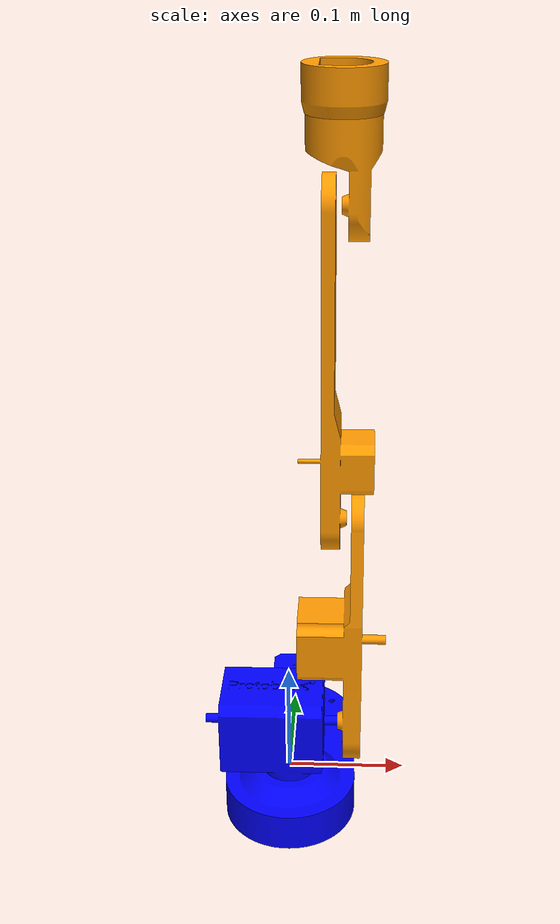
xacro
<?xml version="1.0"?>

<robot name="protobot"
  xmlns:xacro="http://www.ros.org/wiki/xacro">

  <!-- BGN - Include -->
  <xacro:include filename="$(find protobot_description)/urdf/template.xacro" />
  <xacro:include filename="$(find protobot_description)/urdf/protobot.gazebo" />
  <!-- END - Include -->

  <!-- BGN - Material definition -->
  <material name="blue">
    <color rgba="0 0 1 1"/>
  </material>

  <material name="orange">
    <color rgba="1 0.6 0 1"/>
  </material>
  <!-- END - Material definition -->

  <!-- BGN - Robot description -->

  <link name="world"/><joint name="fixed" type="fixed"><parent link="world"/><child link="base_link"/></joint>

  <m_link_mesh name="base_link" origin_rpy="0 0 0" origin_xyz="0 0 0" mass="0.676" ixx="100" ixy="0" ixz="0" iyy="100" iyz="0" izz="100" meshfile="package://protobot_description/meshes/base_link.stl" meshscale="0.001 0.001 0.001" material="blue" />

  <m_joint name="base_link_link_01" type="revolute" axis_xyz="0 0 1" origin_rpy="0 0 0" origin_xyz="0 0 0.0485" parent="base_link" child="link_01" limit_e="1000" limit_l="-3.14" limit_u="3.14" limit_v="0.5" />

  <m_link_mesh name="link_01" origin_rpy="0 0 0" origin_xyz="0 0 0" mass="1.5" ixx="100" ixy="0" ixz="0" iyy="100" iyz="0" izz="100" meshfile="package://protobot_description/meshes/link_01.stl" meshscale="0.001 0.001 0.001" material="blue" />

  <m_joint name="link_01_link_02" type="revolute" axis_xyz="0 0 1" origin_rpy="0 1.57 0" origin_xyz="0.0597 0 0" parent="link_01" child="link_02" limit_e="1000" limit_l="-1.57" limit_u="1.57" limit_v="0.5" />

  <m_link_mesh name="link_02" origin_rpy="0 0 0" origin_xyz="0 0 0" mass="0.780" ixx="50" ixy="0" ixz="0" iyy="50" iyz="0" izz="50" meshfile="package://protobot_description/meshes/link_02.stl" meshscale="0.001 0.001 0.001" material="orange" />

  <m_joint name="link_02_link_03" type="revolute" axis_xyz="0 0 1" origin_rpy="0 0 0" origin_xyz="-0.2 0 0" parent="link_02" child="link_03" limit_e="1000" limit_l="-1.74" limit_u="1.74" limit_v="0.5" />

  <m_link_mesh name="link_03" origin_rpy="0 0 0" origin_xyz="0 0 -0.03" mass="0.409" ixx="20" ixy="0" ixz="0" iyy="20" iyz="0" izz="20" meshfile="package://protobot_description/meshes/link_03.stl" meshscale="0.001 0.001 0.001" material="orange" />

  <m_joint name="link_03_link_04" type="revolute" axis_xyz="0 0 1" origin_rpy="0 0 0" origin_xyz="-0.25 0 0" parent="link_03" child="link_04" limit_e="1000" limit_l="-1.74" limit_u="1.74" limit_v="0.5" />

  <m_link_mesh name="link_04" origin_rpy="0 0 0" origin_xyz="0 0 0" mass="0.195" ixx="10" ixy="0" ixz="0" iyy="10" iyz="0" izz="10" meshfile="package://protobot_description/meshes/link_04.stl" meshscale="0.001 0.001 0.001" material="orange" />

  <m_joint name="link_04_link_05" type="revolute" axis_xyz="0 0 1" origin_rpy="0 -1.57 0" origin_xyz="-0.088362 0 -0.016872" parent="link_04" child="link_05" limit_e="1000" limit_l="-3.14" limit_u="3.14" limit_v="0.5" />

  <m_link_mesh name="link_05" origin_rpy="0 0 0" origin_xyz="0 0 0" mass="0.195" ixx="10" ixy="0" ixz="0" iyy="10" iyz="0" izz="10" meshfile="package://protobot_description/meshes/link_05.stl" meshscale="0.001 0.001 0.001" material="orange" />

  <!-- END - Robot description -->
</robot>

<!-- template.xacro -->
<robot xmlns:xacro="http://www.ros.org/wiki/xacro">

  <xacro:macro name="m_joint" params="name type axis_xyz origin_rpy origin_xyz parent child limit_e limit_l limit_u limit_v">
    <joint name="${name}" type="${type}">
      <axis xyz="${axis_xyz}" />
      <limit effort="${limit_e}" lower="${limit_l}" upper="${limit_u}" velocity="${limit_v}" />
      <origin rpy="${origin_rpy}" xyz="${origin_xyz}" />
      <parent link="${parent}" />
      <child link="${child}" />
    </joint>
    <transmission name="trans_${name}">
      <type>transmission_interface/SimpleTransmission</type>
      <joint name="${name}">
        <hardwareInterface>hardware_interface/EffortJointInterface</hardwareInterface>
      </joint>
      <actuator name="motor_${name}">
        <hardwareInterface>hardware_interface/EffortJointInterface</hardwareInterface>
        <mechanicalReduction>1</mechanicalReduction>
      </actuator>
    </transmission>
  </xacro:macro>

  <xacro:macro name="m_link_mesh" params="name origin_xyz origin_rpy meshfile meshscale mass ixx ixy ixz iyy iyz izz material">
    <link name="${name}">
      <inertial>
        <mass value="${mass}" />
        <origin rpy="${origin_rpy}" xyz="${origin_xyz}" />
        <inertia ixx="${ixx}" ixy="${ixy}" ixz="${ixz}" iyy="${iyy}" iyz="${iyz}" izz="${izz}" />
      </inertial>
      <collision>
        <origin rpy="${origin_rpy}" xyz="${origin_xyz}" />
        <geometry>
          <mesh filename="${meshfile}" scale="${meshscale}"/>
        </geometry>
      </collision>
      <visual>
        <origin rpy="${origin_rpy}" xyz="${origin_xyz}" />
        <geometry>
          <mesh filename="${meshfile}" scale="${meshscale}"/>
        </geometry>
        <material name="${material}"/>
      </visual>
    </link>
  </xacro:macro>

</robot>
